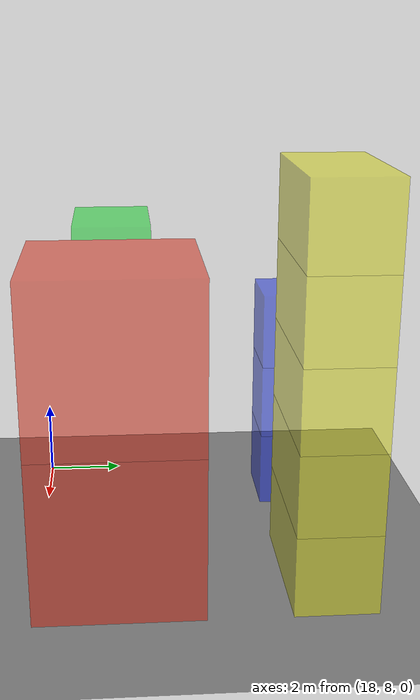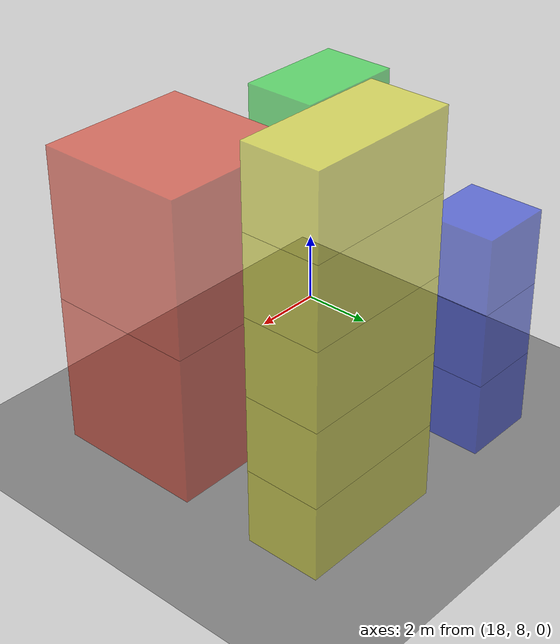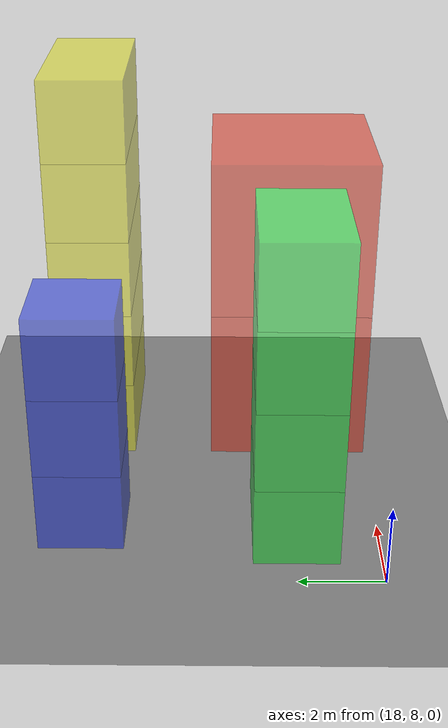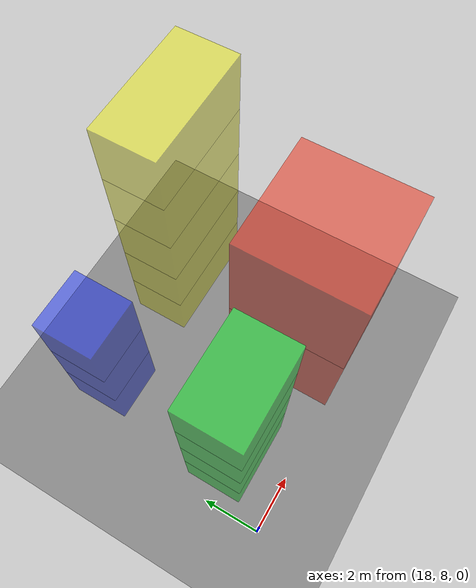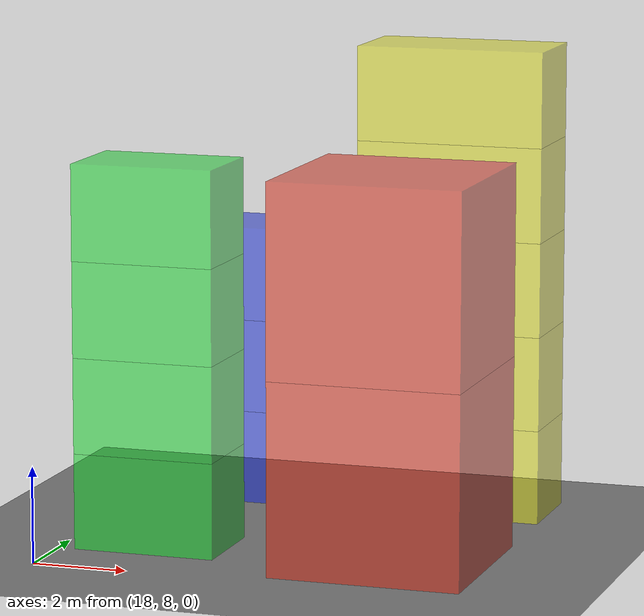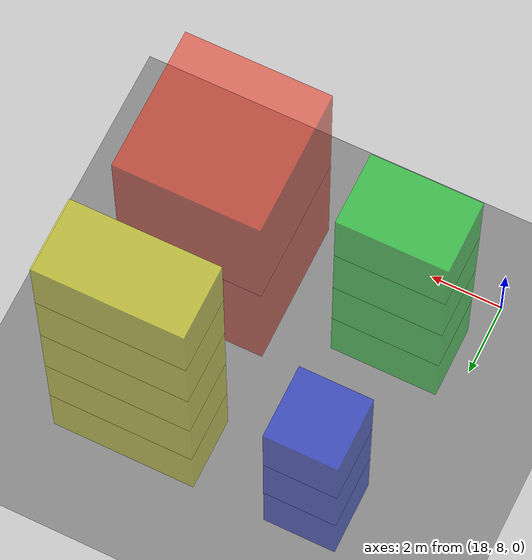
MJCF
<mujoco><visual><headlight ambient="0.3 0.3 0.3" /></visual><asset><texture type="skybox" builtin="gradient" rgb1="1.0 0.7 0.4" rgb2="0.5 0.5 0.5" width="512" height="512" /></asset><worldbody><light diffuse=".25 .25 .25" pos="0 20 20" dir="1 -1 -2" /><geom type="plane" size="100 100 0.1" rgba=".5 .5 .5 1" /><geom pos="10 10 0.1" type="plane" size="5 5 0.1" rgba=".7 .7 .5 .5" /><body pos="25.0 15.0 1.1"><joint type="free" /><geom type="box" size="2 1 1" rgba=".9 .9 0 0.5" mass="1" /></body><body pos="25.0 15.0 3.1"><joint type="free" /><geom type="box" size="2 1 1" rgba=".9 .9 0 0.5" mass="1" /></body><body pos="25.0 15.0 5.1"><joint type="free" /><geom type="box" size="2 1 1" rgba=".9 .9 0 0.5" mass="1" /></body><body pos="25.0 15.0 7.1"><joint type="free" /><geom type="box" size="2 1 1" rgba=".9 .9 0 0.5" mass="1" /></body><body pos="25.0 15.0 9.1"><joint type="free" /><geom type="box" size="2 1 1" rgba=".9 .9 0 0.5" mass="1" /></body><body pos="20.0 10.0 1.1"><joint type="free" /><geom type="box" size="1.5 1 1" rgba="0 .9 .1 0.5" mass="3" /></body><body pos="20.0 10.0 3.1"><joint type="free" /><geom type="box" size="1.5 1 1" rgba="0 .9 .1 0.5" mass="3" /></body><body pos="20.0 10.0 5.1"><joint type="free" /><geom type="box" size="1.5 1 1" rgba="0 .9 .1 0.5" mass="3" /></body><body pos="20.0 10.0 7.1"><joint type="free" /><geom type="box" size="1.5 1 1" rgba="0 .9 .1 0.5" mass="3" /></body><body pos="20.0 15.0 1.1"><joint type="free" /><geom type="box" size="1 1 1" rgba="0 .1 .9 0.5" mass="2" /></body><body pos="20.0 15.0 3.1"><joint type="free" /><geom type="box" size="1 1 1" rgba="0 .1 .9 0.5" mass="2" /></body><body pos="20.0 15.0 5.1"><joint type="free" /><geom type="box" size="1 1 1" rgba="0 .1 .9 0.5" mass="2" /></body><body pos="25.0 10.0 2.1"><joint type="free" /><geom type="box" size="2 2 2" rgba=".9 .1 0 0.5" mass="5" /></body><body pos="25.0 10.0 6.1"><joint type="free" /><geom type="box" size="2 2 2" rgba=".9 .1 0 0.5" mass="5" /></body></worldbody></mujoco>
